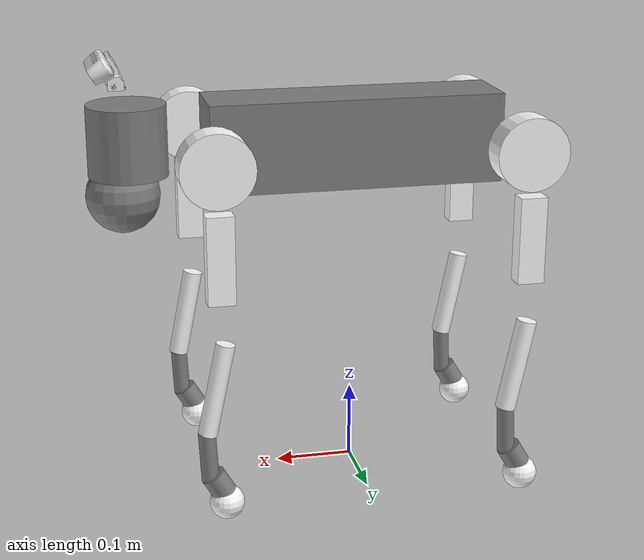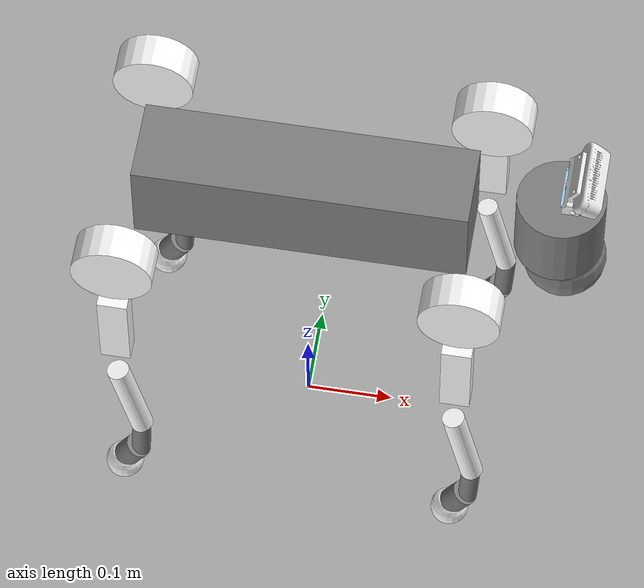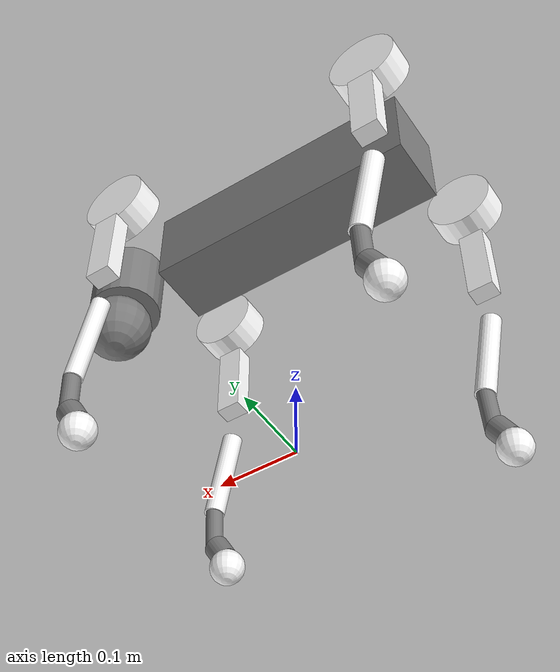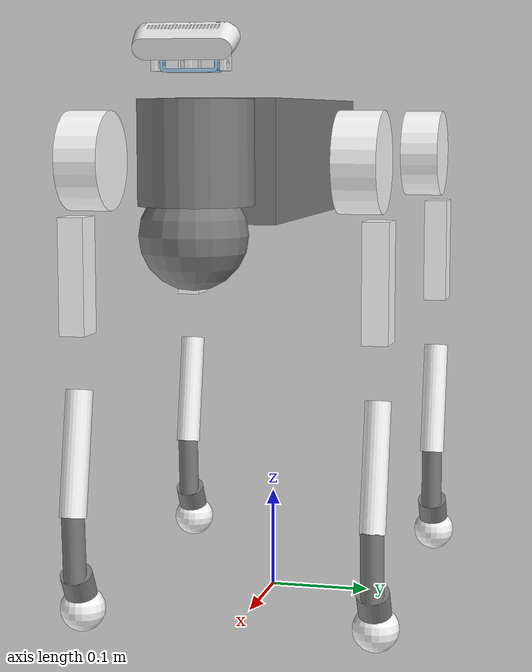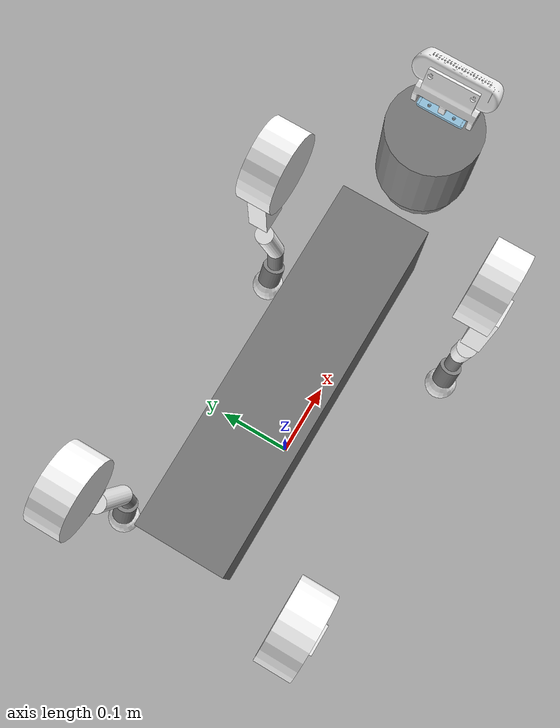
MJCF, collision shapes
<mujoco model="go2_description">

  <compiler angle="radian" meshdir="assets"/>

  <statistic meansize="0.144785" extent="1.23314" center="0.025392 2.0634e-05 -0.245975"/>
  <default>
    <joint damping="0.001" armature="0.01" frictionloss="0.1"/>
    <default class="visual">
        <geom type="mesh" contype="0" conaffinity="0" group="2"/>
    </default>
  </default>

  <asset>
    <material name="metal" rgba=".9 .95 .95 1" />
    <material name="black" rgba="0 0 0 1" />
    <material name="white" rgba="1 1 1 1" />
    <material name="gray" rgba="0.671705 0.692426 0.774270 1" />
    <material name="camera_mount_thick_material" rgba="0.917647 0.917647 0.917647 1"/>
    <material name="camera_base_material" rgba="0.615686 0.811765 0.929412 1"/>
    <material name="camera_d435_material" rgba="0.917647 0.917647 0.917647 1"/>

    <mesh file="base_0.obj" />
    <mesh file="base_1.obj" />
    <mesh file="base_2.obj" />
    <mesh file="base_3.obj" />
    <mesh file="base_4.obj" />
    <mesh file="hip_0.obj" />
    <mesh file="hip_1.obj" />
    <mesh file="thigh_0.obj" />
    <mesh file="thigh_1.obj" />
    <mesh file="thigh_mirror_0.obj" />
    <mesh file="thigh_mirror_1.obj" />
    <mesh file="calf_0.obj" />
    <mesh file="calf_1.obj" />
    <mesh file="calf_mirror_0.obj" />
    <mesh file="calf_mirror_1.obj" />
    <mesh file="foot.obj" />
    <mesh name="camera_base" file="../camera_mount/assets/camera_base.stl" />
    <mesh name="camera_mount_thick" file="../camera_mount/assets/camera_mount_thick.stl" />
    <mesh name="camera_d435" file="../camera_mount/assets/camera_d435.stl" />
  </asset>

  <worldbody>

    <body name="base" pos="0 0 0.445">
      <inertial pos="0.021112 0 -0.005366"
                mass="6.921"
                diaginertia="0.02448 0.098077 0.107" />
      <freejoint name="root"/>
      <geom mesh="base_0" material="black" class="visual" />
      <geom mesh="base_1" material="black" class="visual" />
      <geom mesh="base_2" material="black" class="visual" />
      <geom mesh="base_3" material="white" class="visual" />
      <geom mesh="base_4" material="gray" class="visual" />

      <geom name="base_box"      type="box"      size="0.1881 0.04675 0.057"/>
      <geom name="base_cyl1"     type="cylinder" size="0.05 0.045"   pos="0.285 0 0.01"/>
      <geom name="base_sphere1"  type="sphere"   size="0.047"        pos="0.293 0 -0.06"/>

      <body name="FL_hip" pos="0.1934 0.0465 0">
        <inertial pos="-0.0054 0.00194 -0.000105" quat="0.497014 0.499245 0.505462 0.498237" mass="0.678" diaginertia="0.00088403 0.000596003 0.000479967"/>
        <joint name="FL_hip_joint" pos="0 0 0" axis="1 0 0" range="-1.0472 1.0472" actuatorfrcrange="-23.7 23.7"/>
        <geom mesh="hip_0" material="metal" class="visual" />
        <geom mesh="hip_1" material="gray" class="visual" />
        <geom size="0.046 0.02" pos="0 0.08 0" quat="0.707107 0.707107 0 0" type="cylinder" rgba="1 1 1 1"/>

        <body name="FL_thigh" pos="0 0.0955 0">
        <inertial pos="-0.00374 -0.0223 -0.0327" quat="0.829533 0.0847635 -0.0200632 0.551623" mass="1.152" diaginertia="0.00594973 0.00584149 0.000878787"/>
        <joint name="FL_thigh_joint" pos="0 0 0" axis="0 1 0" range="-1.5708 3.4907" actuatorfrcrange="-23.7 23.7"/>
        <geom mesh="thigh_0" material="metal" class="visual" />
        <geom mesh="thigh_1" material="gray" class="visual" />
        <geom size="0.055 0.01225 0.017" pos="0 0 -0.1065" quat="0.707107 0 0.707107 0" type="box" rgba="1 1 1 1"/>
        <body name="FL_calf" pos="0 0 -0.213">
        <inertial pos="0.00629595 -0.000622121 -0.141417" quat="0.710672 0.00154099 -0.00450087 0.703508" mass="0.241352" diaginertia="0.0014901 0.00146356 5.31397e-05"/>
        <joint name="FL_calf_joint" pos="0 0 0" axis="0 1 0" range="-2.7227 -0.83776" actuatorfrcrange="-35.55 35.55"/>
        <geom mesh="calf_0" material="gray" class="visual" />
        <geom mesh="calf_1" material="black" class="visual" />
        <geom size="0.012 0.06" pos="0.008 0 -0.06" quat="0.994493 0 -0.104807 0" type="cylinder" rgba="1 1 1 1"/>
        <geom size="0.011 0.0325" pos="0.02 0 -0.148" quat="0.999688 0 0.0249974 0" type="cylinder"/>
        <geom size="0.0155 0.015" pos="0.00801333 0 -0.18745" quat="0.965093 0 0.261909 0" type="cylinder"/>
        <geom pos="0 0 -0.213" mesh="foot" class="visual" material="black" />
        <geom size="0.022" pos="-0.002 0 -0.213" rgba="1 1 1 1"/>
        </body>
        </body>
      </body>
      <body name="FR_hip" pos="0.1934 -0.0465 0">
        <inertial pos="-0.0054 -0.00194 -0.000105" quat="0.498237 0.505462 0.499245 0.497014" mass="0.678" diaginertia="0.00088403 0.000596003 0.000479967"/>
        <joint name="FR_hip_joint" pos="0 0 0" axis="1 0 0" range="-1.0472 1.0472" actuatorfrcrange="-23.7 23.7"/>
        <geom mesh="hip_0" material="metal" class="visual" quat="4.63268e-05 1 0 0" />
        <geom mesh="hip_1" material="gray" class="visual" quat="4.63268e-05 1 0 0" />
        <geom size="0.046 0.02" pos="0 -0.08 0" quat="0.707107 0.707107 0 0" type="cylinder" rgba="1 1 1 1"/>
        <body name="FR_thigh" pos="0 -0.0955 0">
        <inertial pos="-0.00374 0.0223 -0.0327" quat="0.551623 -0.0200632 0.0847635 0.829533" mass="1.152" diaginertia="0.00594973 0.00584149 0.000878787"/>
        <joint name="FR_thigh_joint" pos="0 0 0" axis="0 1 0" range="-1.5708 3.4907" actuatorfrcrange="-23.7 23.7"/>
        <geom mesh="thigh_mirror_0" material="metal" class="visual" />
        <geom mesh="thigh_mirror_1" material="gray" class="visual" />
        <geom size="0.055 0.01225 0.017" pos="0 0 -0.1065" quat="0.707107 0 0.707107 0" type="box" rgba="1 1 1 1"/>
        <body name="FR_calf" pos="0 0 -0.213">
        <inertial pos="0.00629595 0.000622121 -0.141417" quat="0.703508 -0.00450087 0.00154099 0.710672" mass="0.241352" diaginertia="0.0014901 0.00146356 5.31397e-05"/>
        <joint name="FR_calf_joint" pos="0 0 0" axis="0 1 0" range="-2.7227 -0.83776" actuatorfrcrange="-35.55 35.55"/>
        <geom mesh="calf_mirror_0" material="gray" class="visual" />
        <geom mesh="calf_mirror_1" material="black" class="visual" />
        <geom size="0.013 0.06" pos="0.01 0 -0.06" quat="0.995004 0 -0.0998334 0" type="cylinder" rgba="1 1 1 1"/>
        <geom size="0.011 0.0325" pos="0.02 0 -0.148" quat="0.999688 0 0.0249974 0" type="cylinder"/>
        <geom size="0.0155 0.015" pos="0.00801333 0 -0.18745" quat="0.965093 0 0.261909 0" type="cylinder"/>
        <geom pos="0 0 -0.213" mesh="foot" class="visual" material="black" />
        <geom size="0.022" pos="-0.002 0 -0.213" rgba="1 1 1 1"/>
        </body>
        </body>
      </body>
      <body name="RL_hip" pos="-0.1934 0.0465 0">
        <inertial pos="0.0054 0.00194 -0.000105" quat="0.505462 0.498237 0.497014 0.499245" mass="0.678" diaginertia="0.00088403 0.000596003 0.000479967"/>
        <joint name="RL_hip_joint" pos="0 0 0" axis="1 0 0" range="-1.0472 1.0472" actuatorfrcrange="-23.7 23.7"/>
        <geom mesh="hip_0" material="metal" class="visual" quat="4.63268e-05 0 1 0" />
        <geom mesh="hip_1" material="gray" class="visual" quat="4.63268e-05 0 1 0" />
        <geom size="0.046 0.02" pos="0 0.08 0" quat="0.707107 0.707107 0 0" type="cylinder" rgba="1 1 1 1"/>
        <body name="RL_thigh" pos="0 0.0955 0">
        <inertial pos="-0.00374 -0.0223 -0.0327" quat="0.829533 0.0847635 -0.0200632 0.551623" mass="1.152" diaginertia="0.00594973 0.00584149 0.000878787"/>
        <joint name="RL_thigh_joint" pos="0 0 0" axis="0 1 0" range="-0.5236 4.5379" actuatorfrcrange="-23.7 23.7"/>
        <geom mesh="thigh_0" material="metal" class="visual" />
        <geom mesh="thigh_1" material="gray" class="visual" />
        <geom size="0.055 0.01225 0.017" pos="0 0 -0.1065" quat="0.707107 0 0.707107 0" type="box" rgba="1 1 1 1"/>
        <body name="RL_calf" pos="0 0 -0.213">
        <inertial pos="0.00629595 -0.000622121 -0.141417" quat="0.710672 0.00154099 -0.00450087 0.703508" mass="0.241352" diaginertia="0.0014901 0.00146356 5.31397e-05"/>
        <joint name="RL_calf_joint" pos="0 0 0" axis="0 1 0" range="-2.7227 -0.83776" actuatorfrcrange="-35.55 35.55"/>
        <geom mesh="calf_0" material="gray" class="visual" />
        <geom mesh="calf_1" material="black" class="visual" />
        <geom size="0.013 0.06" pos="0.01 0 -0.06" quat="0.995004 0 -0.0998334 0" type="cylinder" rgba="1 1 1 1"/>
        <geom size="0.011 0.0325" pos="0.02 0 -0.148" quat="0.999688 0 0.0249974 0" type="cylinder"/>
        <geom size="0.0155 0.015" pos="0.00801333 0 -0.18745" quat="0.965093 0 0.261909 0" type="cylinder"/>
        <geom pos="0 0 -0.213" mesh="foot" class="visual" material="black" />
        <geom size="0.022" pos="-0.002 0 -0.213" rgba="1 1 1 1"/>
        </body>
        </body>
      </body>

      <body name="RR_hip" pos="-0.1934 -0.0465 0">
        <inertial pos="0.0054 -0.00194 -0.000105" quat="0.499245 0.497014 0.498237 0.505462" mass="0.678" diaginertia="0.00088403 0.000596003 0.000479967"/>
        <joint name="RR_hip_joint" pos="0 0 0" axis="1 0 0" range="-1.0472 1.0472" actuatorfrcrange="-23.7 23.7"/>
        <geom mesh="hip_0" material="metal" class="visual"
          quat="2.14617e-09 4.63268e-05 4.63268e-05 -1" />
        <geom mesh="hip_1" material="gray" class="visual"
          quat="2.14617e-09 4.63268e-05 4.63268e-05 -1" />
        <geom size="0.046 0.02" pos="0 -0.08 0" quat="0.707107 0.707107 0 0" type="cylinder" rgba="1 1 1 1"/>
        <body name="RR_thigh" pos="0 -0.0955 0">
        <inertial pos="-0.00374 0.0223 -0.0327" quat="0.551623 -0.0200632 0.0847635 0.829533" mass="1.152" diaginertia="0.00594973 0.00584149 0.000878787"/>
        <joint name="RR_thigh_joint" pos="0 0 0" axis="0 1 0" range="-0.5236 4.5379" actuatorfrcrange="-23.7 23.7"/>
        <geom mesh="thigh_mirror_0" material="metal" class="visual" />
        <geom mesh="thigh_mirror_1" material="gray" class="visual" />
        <geom size="0.055 0.01225 0.017" pos="0 0 -0.1065" quat="0.707107 0 0.707107 0" type="box" rgba="1 1 1 1"/>
        <body name="RR_calf" pos="0 0 -0.213">
        <inertial pos="0.00629595 0.000622121 -0.141417" quat="0.703508 -0.00450087 0.00154099 0.710672" mass="0.241352" diaginertia="0.0014901 0.00146356 5.31397e-05"/>
        <joint name="RR_calf_joint" pos="0 0 0" axis="0 1 0" range="-2.7227 -0.83776" actuatorfrcrange="-35.55 35.55"/>
        <geom mesh="calf_mirror_0" material="gray" class="visual" />
        <geom mesh="calf_mirror_1" material="black" class="visual" />
        <geom size="0.013 0.06" pos="0.01 0 -0.06" quat="0.995004 0 -0.0998334 0" type="cylinder" rgba="1 1 1 1"/>
        <geom size="0.011 0.0325" pos="0.02 0 -0.148" quat="0.999688 0 0.0249974 0" type="cylinder"/>
        <geom size="0.0155 0.015" pos="0.00801333 0 -0.18745" quat="0.965093 0 0.261909 0" type="cylinder"/>
        <geom pos="0 0 -0.213" mesh="foot" class="visual" material="black" />
        <geom size="0.022" pos="-0.002 0 -0.213" rgba="1 1 1 1"/>
        </body>
        </body>
      </body>

      <body name="front_camera" pos="0.32715 -0.00003 0.04297">
        <body name="camera_base" pos="-0.0316 0 0.0339" quat="0.707106781 0 0 0.707106781">
          <inertial pos="0 0 0" mass="1e-09" fullinertia="1e-09 1e-09 1e-09 0 0 0"/>
          <geom type="mesh" class="visual" pos="0 -0.002512 0.0335" quat="1 0 0 0" mesh="camera_mount_thick" material="camera_mount_thick_material"/>
          <geom type="mesh" group="3" pos="0 -0.002512 0.0335" quat="1 0 0 0" mesh="camera_mount_thick" material="camera_mount_thick_material"/>
          <geom type="mesh" class="visual" pos="0 -1.20037e-05 0" quat="1 0 0 0" mesh="camera_base" material="camera_base_material"/>
          <geom type="mesh" group="3" pos="0 -1.20037e-05 0" quat="1 0 0 0" mesh="camera_base" material="camera_base_material"/>
          <geom type="mesh" class="visual" pos="0 -0.0309136 0.0179006" quat="0.48481 0.87462 0 0" mesh="camera_d435" material="camera_d435_material"/>
          <geom type="mesh" group="3" pos="0 -0.0309136 0.0179006" quat="0.48481 0.87462 0 0" mesh="camera_d435" material="camera_d435_material"/>
        </body>
      </body>

    </body>
  </worldbody>

  <actuator>
    <motor name="FL_hip"   joint="FL_hip_joint"/>
    <motor name="FL_thigh" joint="FL_thigh_joint"/>
    <motor name="FL_calf"  joint="FL_calf_joint"/>
    <motor name="FR_hip"   joint="FR_hip_joint"/>
    <motor name="FR_thigh" joint="FR_thigh_joint"/>
    <motor name="FR_calf"  joint="FR_calf_joint"/>
    <motor name="RL_hip"   joint="RL_hip_joint"/>
    <motor name="RL_thigh" joint="RL_thigh_joint"/>
    <motor name="RL_calf"  joint="RL_calf_joint"/>
    <motor name="RR_hip"   joint="RR_hip_joint"/>
    <motor name="RR_thigh" joint="RR_thigh_joint"/>
    <motor name="RR_calf"  joint="RR_calf_joint"/>
  </actuator>

</mujoco>
